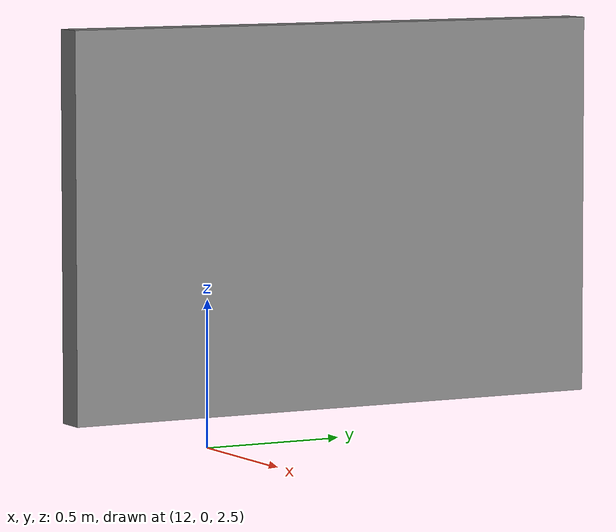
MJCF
<mujoco model="court">
  <asset>
      <mesh name="hoop" file="hoop.stl" />
  </asset>
  <worldbody>
    <body name="court" pos="0 0 0">
      <geom type="mesh" pos="12.4 0 3.05" mesh="hoop" />
      <geom type="mesh" pos="12.4 0 3.05" mesh="hoop" contype="0" conaffinity="0" group="1" />
      <geom type="box" pos="12.85 0 3.3545" size="0.05 0.9145 0.6095"/>
      <geom type="box" pos="12.85 0 3.3545" size="0.05 0.9145 0.6095" contype="0" conaffinity="0" group="1"/>
      <geom type="box" pos="12.7225 0 3.05" size="0.0775 0.05 0.01"/>
      <geom type="box" pos="12.7225 0 3.05" size="0.0775 0.05 0.01" contype="0" conaffinity="0" group="1"/>
    </body>
  </worldbody>
</mujoco>
